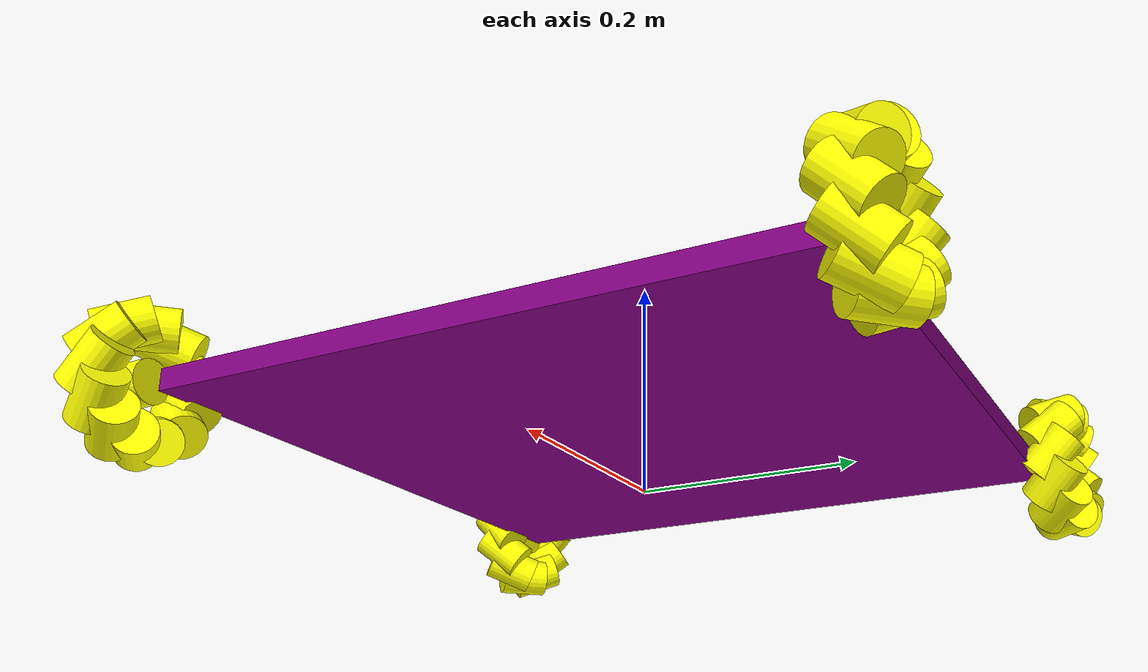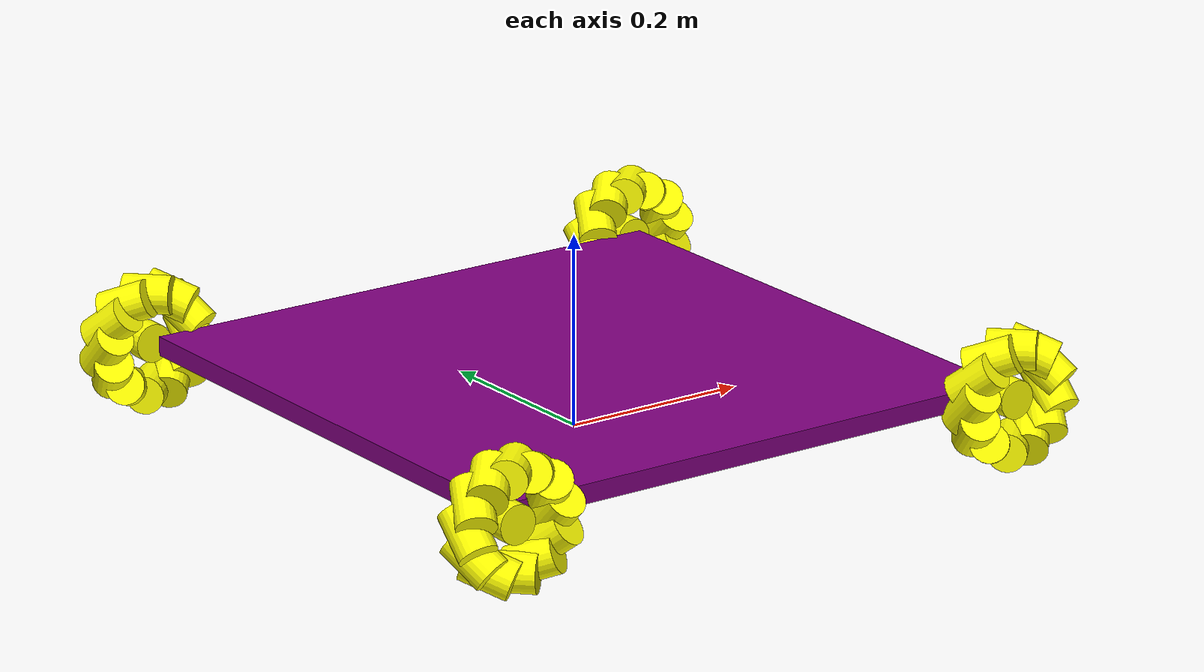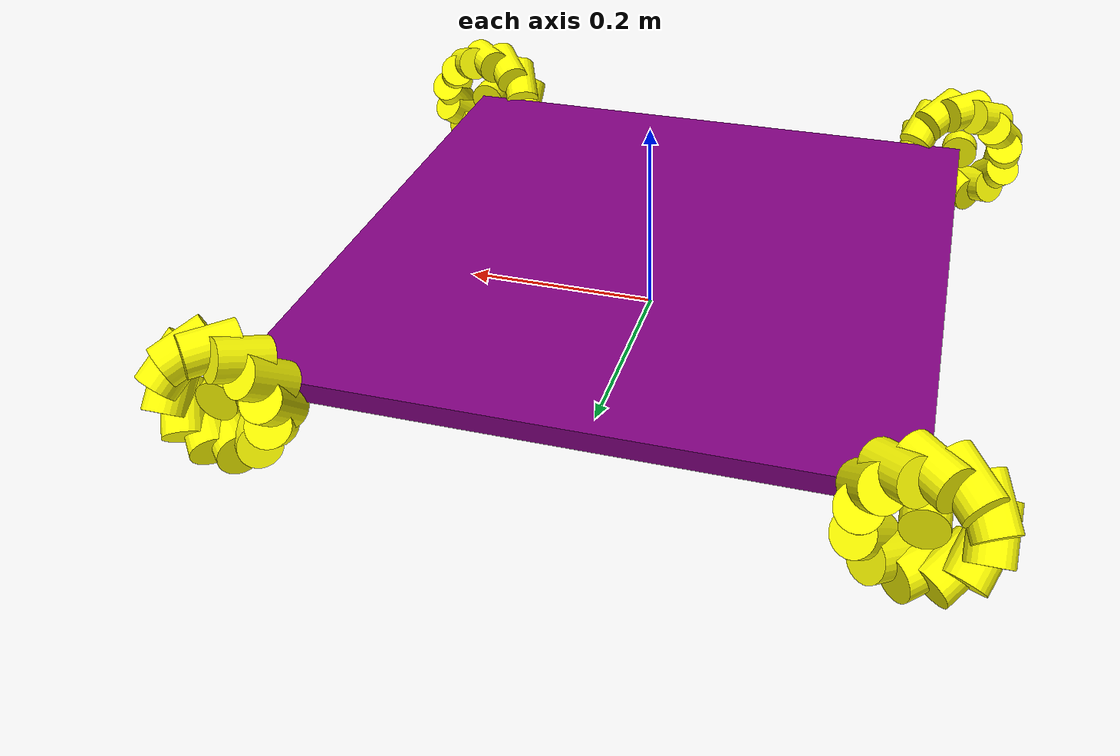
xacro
<?xml version="1.0"?>
<!-- Basic mecanum drive mobile base -->
<robot xmlns:xacro="http://www.ros.org/wiki/xacro" name="smashit_robot">
  <xacro:arg name="prefix" default="" />
  <xacro:arg name="use_mock_hardware" default="false" />

  <xacro:include filename="$(find smash_it)/urdf/smashit_description.urdf.xacro" />

  <!-- Import Rviz colors -->
  <xacro:include filename="$(find smash_it)/urdf/smashit.materials.xacro" />

  <!-- Import smashit_bot ros2_control description -->
  <xacro:include filename="$(find smash_it)/ros2_control/smashit.ros2_control.xacro" />

  <xacro:smashit_bot prefix="$(arg prefix)" />

  <xacro:smashit_bot_ros2_control
    name="SmashitBot" prefix="$(arg prefix)" use_mock_hardware="$(arg use_mock_hardware)"/>

</robot>

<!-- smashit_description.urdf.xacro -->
<robot xmlns:xacro="http://www.ros.org/wiki/xacro">

    <xacro:macro name="smashit_bot" params="prefix">

    <xacro:include filename="inertial_macros.xacro" />

    <!-- Colors -->
    <material name="purple">
        <color rgba="0.5 0 0.5 1"/>
    </material>

    <material name="yellow">
      <color rgba="1.0 1.0 0.0 1.0"/>
    </material>

    <!-- Chassis Properties -->
    <xacro:property name="chassis_width" value="0.6"/>       <!-- 6 meter = 600 cm -->
    <xacro:property name="chassis_height" value="0.6"/>      <!-- 6 meter = 600 cm -->
    <xacro:property name="chassis_depth" value="0.02"/>      <!-- 0.02meter = 2 cm -->
    <xacro:property name="chassis_mass" value="1"/>          <!-- 1 kg -->

    <!-- Wheel Properties -->
    <xacro:property name="wheel_radius" value="0.02"/>
    <xacro:property name="wheel_width" value="0.02"/>
    <xacro:property name="wheel_mass" value="1"/>

    <!-- Wheel Macro -->
    <xacro:macro name="wheel_macro" params="wheel_name wheel_color">    <!-- mu max_val=1 (max friction) min_val=0(min friction) -->
        <link name="${wheel_name}">
            <visual>
                <origin xyz="0 0 0" rpy="0 0 0"/>
                <geometry>
                   <cylinder length="${wheel_width}" radius="${wheel_radius}" />
                </geometry>
                <material name="yellow"/>
            </visual>

            <collision>
                <origin xyz="0 0 0" rpy="0 0 0"/>
                <geometry>
                    <cylinder length="${wheel_width}" radius="${wheel_radius}" />
                </geometry>
            </collision>

            <xacro:inertial_cylinder mass="${wheel_mass}" length="${wheel_width}" radius="${wheel_radius}">
                <origin xyz="0 0 0" rpy="0 0 0"/>
            </xacro:inertial_cylinder>
        </link>

        <gazebo reference="${wheel_name}">
            <material>${wheel_color}</material>
        </gazebo>

    </xacro:macro>

    <!-- Roller Macro -->
    <xacro:macro name="roller_macro" params="sno base_wheel x y z roll pitch yaw">

        <!-- Roller Link -->
        <link name="roll_${sno}">

            <visual>
                <origin xyz="0 0 0" rpy="0 0 0"/>
                <geometry>
                   <cylinder length="0.05" radius="0.02" />

                </geometry>
                <material name="yellow"/>
            </visual>

            <collision>
                <origin xyz="0 0 0" rpy="0 0 0"/>
                <geometry>
                    <cylinder length="0.05" radius="0.02" />

                </geometry>
            </collision>

            <xacro:inertial_cylinder mass="0.2" length="0.028" radius="0.00525">    <!-- Length=28mm radius=10.5 -->
            <!-- Actual value but not the best -->
                <origin xyz="0 0 0" rpy="0 0 0"/>
            </xacro:inertial_cylinder>

        </link>

        <gazebo reference="roll_${sno}">
            <material>Gazebo/Yellow</material>
        </gazebo>

        <joint name="r_joint_${sno}" type="continuous">
            <parent link="${base_wheel}" />
            <child link="roll_${sno}" />
            <origin xyz="${x} ${y} ${z}" rpy="${roll} ${pitch} ${yaw}" />
            <axis xyz="0 0 1"/>
        </joint>

    </xacro:macro>

    <!-- Roller Group Macro -->
    <xacro:macro name="roller_group_macro" params="base_wheel roller_angle" >

        <!-- Roller_1 -->
        <xacro:roller_macro sno="1_${base_wheel}" base_wheel="${base_wheel}" x="0.05" y="0.0" z="0.0" roll="${roller_angle}" pitch="0.0" yaw="0.0" />

        <!-- Roller_2 -->
        <xacro:roller_macro sno="2_${base_wheel}" base_wheel="${base_wheel}" x="0.043301" y="0.025" z="0.0" roll="${roller_angle}" pitch="0.0" yaw="0.5236" />

        <!-- Roller_3 -->
        <xacro:roller_macro sno="3_${base_wheel}" base_wheel="${base_wheel}" x="0.025" y="0.043301" z="0.0" roll="${roller_angle}" pitch="0.0" yaw="1.0472" />

        <!-- Roller_4 -->
        <xacro:roller_macro sno="4_${base_wheel}" base_wheel="${base_wheel}" x="0.0" y="0.05" z="0.0" roll="${roller_angle}" pitch="0.0" yaw="1.5708" />

        <!-- Roller_5 -->
        <xacro:roller_macro sno="5_${base_wheel}" base_wheel="${base_wheel}" x="-0.025" y="0.043301" z="0.0" roll="${roller_angle}" pitch="0.0" yaw="2.0944" />

        <!-- Roller_6 -->
        <xacro:roller_macro sno="6_${base_wheel}" base_wheel="${base_wheel}" x="-0.043301" y="0.025" z="0.0" roll="${roller_angle}" pitch="0.0" yaw="2.6180" />

        <!-- Roller_7 -->
        <xacro:roller_macro sno="7_${base_wheel}" base_wheel="${base_wheel}" x="-0.05" y="0.0" z="0.0" roll="${roller_angle}" pitch="0.0" yaw="3.1416" />

        <!-- Roller_8 -->
        <xacro:roller_macro sno="8_${base_wheel}" base_wheel="${base_wheel}" x="-0.043301" y="-0.025" z="0.0" roll="${roller_angle}" pitch="0.0" yaw="3.6652" />

        <!-- Roller_9 -->
        <xacro:roller_macro sno="9_${base_wheel}" base_wheel="${base_wheel}" x="-0.025" y="-0.043301" z="0.0" roll="${roller_angle}" pitch="0.0" yaw="4.1888" />

        <!-- Roller_10 -->
        <xacro:roller_macro sno="10_${base_wheel}" base_wheel="${base_wheel}" x="0.0" y="-0.05" z="0.0" roll="${roller_angle}" pitch="0.0" yaw="4.7124" />

        <!-- Roller_11 -->
        <xacro:roller_macro sno="11_${base_wheel}" base_wheel="${base_wheel}" x="0.025" y="-0.043301" z="0.0" roll="${roller_angle}" pitch="0.0" yaw="5.2360" />

        <!-- Roller_12 -->

        <xacro:roller_macro sno="12_${base_wheel}" base_wheel="${base_wheel}" x="0.043301" y="-0.025" z="0.0" roll="${roller_angle}" pitch="0.0" yaw="5.7596" />

        <!-- 9 rollers wheel set -->

    </xacro:macro>

    <!-- INTEGRATING COMPONENTS -->

    <!-- BASE LINK -->
    <link name="base_link">
    </link>

    <!-- Chassis Link -->
    <joint name="chassis_joint" type="fixed">
        <parent link="base_link"/>
        <child link="chassis_link"/>
        <origin xyz="0 0 0.06"/>    <!-- xyz = 0, 0, height_to_raise + chassis_depth/2 -->
    </joint>

    <link name="chassis_link">
        <visual>
            <origin xyz="0 0 0" rpy="0 0 0"/>
            <geometry>
                <box size="${chassis_width} ${chassis_height} ${chassis_depth}"/>
            </geometry>
            <material name="purple"/>
        </visual>

        <collision>
            <origin xyz="0 0 0" rpy="0 0 0"/>
            <geometry>
                <box size="${chassis_width} ${chassis_height} ${chassis_depth}"/>
            </geometry>
        </collision>

        <xacro:inertial_box mass="${chassis_mass}" x="${chassis_width}" y="${chassis_height}" z="${chassis_depth}">
            <origin xyz="0 0 0" rpy="0 0 0"/>
        </xacro:inertial_box>
    </link>

    <gazebo reference="chassis_link">
        <material>Gazebo/Purple</material>
    </gazebo>

    <!-- Front Left Wheel -->

    <joint name="front_left_joint" type="continuous">
        <parent link="chassis_link" />
        <child link="front_left_link" />
        <origin xyz="0.3 0.32 0" rpy="${pi/2} 0 0" />
        <axis xyz="0 0 -1"/>
    </joint>

    <xacro:wheel_macro wheel_name="front_left_link" wheel_color="Gazebo/Green"/>
    <xacro:roller_group_macro base_wheel="front_left_link" roller_angle="${-pi/4}"/>    <!-- roller_angle= ${pi/4} or ${-pi/4} -->

    <!-- Front Right Wheel -->

    <joint name="front_right_joint" type="continuous">
        <parent link="chassis_link" />
        <child link="front_right_link" />
        <origin xyz="0.3 -0.32 0" rpy="${pi/2} 0 0" />
        <axis xyz="0 0 -1"/>
    </joint>

    <xacro:wheel_macro wheel_name="front_right_link" wheel_color="Gazebo/Green"/>
    <xacro:roller_group_macro base_wheel="front_right_link" roller_angle="${pi/4}"/>    <!-- roller_angle= ${pi/4} or ${-pi/4}-->

    <!-- Rear Left Wheel -->

    <joint name="rear_left_joint" type="continuous">
        <parent link="chassis_link" />
        <child link="rear_left_link" />
        <origin xyz="-0.3 0.32 0" rpy="${pi/2} 0 0" />
        <axis xyz="0 0 -1"/>
        <!-- 0.3 (half chassis width) + 0.01 (half tyer width) + 0.01 (safety margin). -->
    </joint>

    <xacro:wheel_macro wheel_name="rear_left_link" wheel_color="Gazebo/Yellow"/>
    <xacro:roller_group_macro base_wheel="rear_left_link" roller_angle="${pi/4}"/>    <!-- roller_angle= ${pi/4} or ${-pi/4} -->

    <!-- Rear Right Wheel -->

    <joint name="rear_right_joint" type="continuous">
        <parent link="chassis_link" />
        <child link="rear_right_link" />
        <origin xyz="-0.3 -0.32 0" rpy="${pi/2} 0 0" />
        <axis xyz="0 0 -1"/>

    </joint>

    <xacro:wheel_macro wheel_name="rear_right_link" wheel_color="Gazebo/Yellow"/>
    <xacro:roller_group_macro base_wheel="rear_right_link" roller_angle="${-pi/4}"/>    <!-- roller_angle= ${pi/4} or ${-pi/4}-->

    </xacro:macro>
</robot>

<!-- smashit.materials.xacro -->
<robot>

  <material name="black">
    <color rgba="0.0 0.0 0.0 1.0"/>
  </material>

  <material name="blue">
    <color rgba="0.0 0.0 0.8 1.0"/>
  </material>

  <material name="green">
    <color rgba="0.0 0.8 0.0 1.0"/>
  </material>

  <material name="grey">
    <color rgba="0.2 0.2 0.2 1.0"/>
  </material>

  <material name="orange">
    <color rgba="${255/255} ${108/255} ${10/255} 1.0"/>
  </material>

  <material name="brown">
    <color rgba="${222/255} ${207/255} ${195/255} 1.0"/>
  </material>

  <material name="red">
    <color rgba="0.8 0.0 0.0 1.0"/>
  </material>

  <material name="white">
    <color rgba="1.0 1.0 1.0 1.0"/>
  </material>

</robot>

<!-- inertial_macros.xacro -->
<robot xmlns:xacro="http://www.ros.org/wiki/xacro" >

    <!-- Specify some standard inertial calculations https://en.wikipedia.org/wiki/List_of_moments_of_inertia -->

    <xacro:macro name="inertial_sphere" params="mass radius *origin">
        <inertial>
            <xacro:insert_block name="origin"/>
            <mass value="${mass}" />
            <inertia ixx="${(2/5) * mass * (radius*radius)}" ixy="0.0" ixz="0.0"
                    iyy="${(2/5) * mass * (radius*radius)}" iyz="0.0"
                    izz="${(2/5) * mass * (radius*radius)}" />
        </inertial>
    </xacro:macro>

    <xacro:macro name="inertial_box" params="mass x y z *origin">
        <inertial>
            <xacro:insert_block name="origin"/>
            <mass value="${mass}" />
            <inertia ixx="${(1/12) * mass * (y*y+z*z)}" ixy="0.0" ixz="0.0"
                    iyy="${(1/12) * mass * (x*x+z*z)}" iyz="0.0"
                    izz="${(1/12) * mass * (x*x+y*y)}" />
        </inertial>
    </xacro:macro>

    <xacro:macro name="inertial_cylinder" params="mass length radius *origin">
        <inertial>
            <xacro:insert_block name="origin"/>
            <mass value="${mass}" />
            <inertia ixx="${(1/12) * mass * (3*radius*radius + length*length)}" ixy="0.0" ixz="0.0"
                    iyy="${(1/12) * mass * (3*radius*radius + length*length)}" iyz="0.0"
                    izz="${(1/2) * mass * (radius*radius)}" />
        </inertial>
    </xacro:macro>

</robot>
